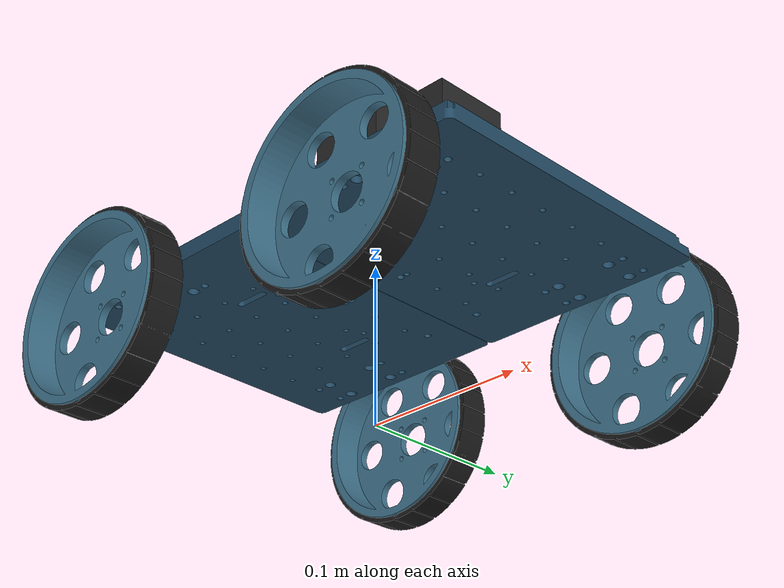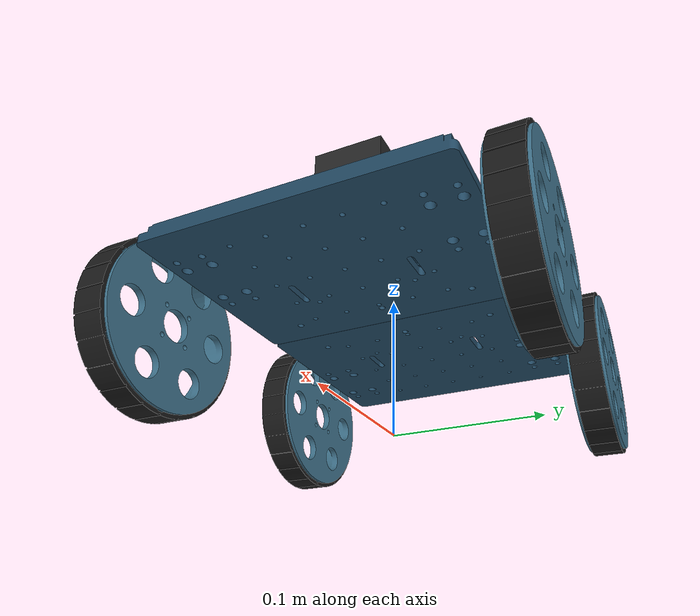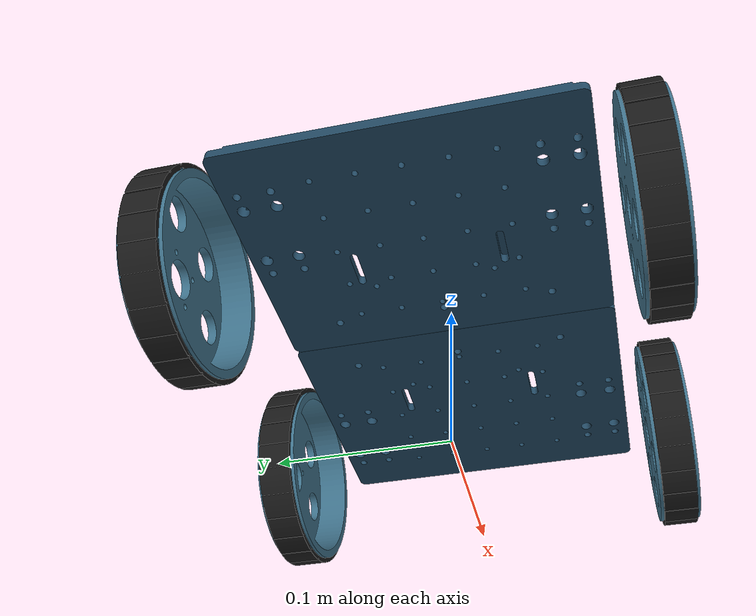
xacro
<?xml version="1.0"?>
<robot name="mobile_robot" xmlns:xacro="http://www.ros.org/wiki/xacro">
  <xacro:arg name="simulation" default="false"/>
  <!-- CAD: SI units; X forward, Y left, Z up; base origin at ground centre. -->
  <xacro:property name="radius" value="0.060"/>
  <xacro:property name="half_track" value="0.123"/>
  <xacro:property name="half_wheelbase" value="0.095"/>
  <xacro:macro name="box_inertia" params="mass x y z">
    <inertial><mass value="${mass}"/><inertia ixx="${mass*(y*y+z*z)/12}" ixy="0" ixz="0" iyy="${mass*(x*x+z*z)/12}" iyz="0" izz="${mass*(x*x+y*y)/12}"/></inertial>
  </xacro:macro>
  <xacro:macro name="mesh" params="part xyz rpy color">
    <visual><origin xyz="${xyz}" rpy="${rpy}"/><geometry><mesh filename="package://mobile_robot_description/meshes/${part}.stl"/></geometry><material name="${part}"><color rgba="${color}"/></material></visual>
  </xacro:macro>
  <!-- 3 kg total is an assumed CAD design target, not a measured mass. -->
  <link name="base_link">
    <inertial><origin xyz="0 0 0.085"/><mass value="2.35"/><inertia ixx="0.010" ixy="0" ixz="0" iyy="0.020" iyz="0" izz="0.026"/></inertial>
    <xacro:mesh part="P01_deck_front" xyz="0.075075 0 0.093" rpy="0 0 0" color="0.13 0.28 0.38 1"/>
    <xacro:mesh part="P02_deck_rear" xyz="-0.075075 0 0.093" rpy="0 0 0" color="0.13 0.28 0.38 1"/>
    <xacro:mesh part="P10_sensor_platform" xyz="0 0 0.1445" rpy="0 0 0" color="0.13 0.28 0.38 1"/>
    <collision><origin xyz="0 0 0.093"/><geometry><box size="0.300 0.200 0.014"/></geometry></collision>
    <collision><origin xyz="0 0 0.1445"/><geometry><box size="0.120 0.100 0.005"/></geometry></collision>
  </link>
  <xacro:macro name="wheel" params="name x y">
    <link name="${name}_link">
      <inertial><mass value="0.12"/><inertia ixx="0.0001104" ixy="0" ixz="0" iyy="0.000216" iyz="0" izz="0.0001104"/></inertial>
      <xacro:mesh part="P08_wheel_rim" xyz="0 0 0" rpy="${pi/2} 0 0" color="0.25 0.45 0.55 1"/>
      <xacro:mesh part="P09_TPU_tyre" xyz="0 0 0" rpy="${pi/2} 0 0" color="0.10 0.10 0.10 1"/>
      <collision><origin rpy="${pi/2} 0 0"/><geometry><cylinder radius="${radius}" length="0.020"/></geometry></collision>
    </link>
    <joint name="${name}_joint" type="continuous">
      <parent link="base_link"/><child link="${name}_link"/><origin xyz="${x} ${y} ${radius}"/><axis xyz="0 1 0"/>
      <limit effort="1.5" velocity="5.0"/><dynamics damping="0.01" friction="0.0"/>
    </joint>
    <!-- Low contact friction is an initial simulation tuning for skid steering. -->
    <gazebo reference="${name}_link"><mu1>0.6</mu1><mu2>0.6</mu2></gazebo>
  </xacro:macro>
  <xacro:wheel name="front_left_wheel" x="${half_wheelbase}" y="${half_track}"/>
  <xacro:wheel name="rear_left_wheel" x="${-half_wheelbase}" y="${half_track}"/>
  <xacro:wheel name="front_right_wheel" x="${half_wheelbase}" y="${-half_track}"/>
  <xacro:wheel name="rear_right_wheel" x="${-half_wheelbase}" y="${-half_track}"/>
  <xacro:macro name="sensor_link" params="name xyz x y z mass">
    <link name="${name}"><xacro:box_inertia mass="${mass}" x="${x}" y="${y}" z="${z}"/>
      <visual><geometry><box size="${x} ${y} ${z}"/></geometry><material name="sensor_black"><color rgba="0.15 0.15 0.15 1"/></material></visual>
      <collision><geometry><box size="${x} ${y} ${z}"/></geometry></collision>
    </link>
    <joint name="${name}_joint" type="fixed"><parent link="base_link"/><child link="${name}"/><origin xyz="${xyz}"/></joint>
  </xacro:macro>
  <xacro:sensor_link name="lidar_link" xyz="0 0 0.185" x="0.05" y="0.05" z="0.04" mass="0.10"/>
  <xacro:sensor_link name="camera_link" xyz="0.065 0 0.17" x="0.025" y="0.05" z="0.025" mass="0.05"/>
  <xacro:sensor_link name="imu_link" xyz="0 0 0.105" x="0.02" y="0.02" z="0.01" mass="0.02"/>
  <link name="camera_optical_frame"/>
  <joint name="camera_optical_joint" type="fixed"><parent link="camera_link"/><child link="camera_optical_frame"/><origin rpy="${-pi/2} 0 ${-pi/2}"/></joint>
  <xacro:if value="$(arg simulation)">
    <ros2_control name="GazeboSystem" type="system">
      <hardware><plugin>gz_ros2_control/GazeboSimSystem</plugin></hardware>
      <xacro:macro name="wheel_interface" params="name">
        <joint name="${name}_joint"><command_interface name="velocity"><param name="min">-5.0</param><param name="max">5.0</param></command_interface><state_interface name="position"/><state_interface name="velocity"/></joint>
      </xacro:macro>
      <xacro:wheel_interface name="front_left_wheel"/><xacro:wheel_interface name="rear_left_wheel"/>
      <xacro:wheel_interface name="front_right_wheel"/><xacro:wheel_interface name="rear_right_wheel"/>
    </ros2_control>
    <gazebo><plugin filename="gz_ros2_control-system" name="gz_ros2_control::GazeboSimROS2ControlPlugin"><parameters>$(find mobile_robot_control)/config/controllers.yaml</parameters></plugin></gazebo>
    <!-- Preserve sensor link names and joints when URDF is reduced to SDF. -->
    <gazebo reference="lidar_link_joint"><preserveFixedJoint>true</preserveFixedJoint></gazebo>
    <gazebo reference="camera_link_joint"><preserveFixedJoint>true</preserveFixedJoint></gazebo>
    <gazebo reference="imu_link_joint"><preserveFixedJoint>true</preserveFixedJoint></gazebo>
    <gazebo reference="lidar_link"><sensor name="lidar" type="gpu_lidar">
      <topic>/scan</topic><gz_frame_id>lidar_link</gz_frame_id><update_rate>10</update_rate><always_on>true</always_on>
      <lidar><scan><horizontal><samples>360</samples><resolution>1</resolution><min_angle>${-pi}</min_angle><max_angle>${pi}</max_angle></horizontal></scan><range><min>0.08</min><max>10.0</max><resolution>0.01</resolution></range><noise><type>gaussian</type><mean>0</mean><stddev>0.01</stddev></noise></lidar>
    </sensor></gazebo>
    <gazebo reference="imu_link"><sensor name="imu" type="imu"><topic>/imu/data</topic><gz_frame_id>imu_link</gz_frame_id><update_rate>100</update_rate><always_on>true</always_on><imu><angular_velocity><z><noise type="gaussian"><mean>0</mean><stddev>0.005</stddev></noise></z></angular_velocity></imu></sensor></gazebo>
    <gazebo reference="camera_link"><sensor name="camera" type="camera"><topic>/camera/image</topic><gz_frame_id>camera_optical_frame</gz_frame_id><update_rate>15</update_rate><always_on>true</always_on><camera><horizontal_fov>1.047</horizontal_fov><image><width>640</width><height>480</height><format>R8G8B8</format></image><clip><near>0.02</near><far>15</far></clip></camera></sensor></gazebo>
  </xacro:if>
</robot>
